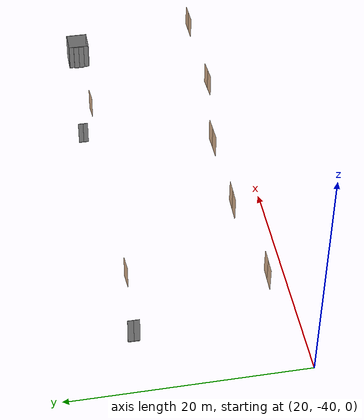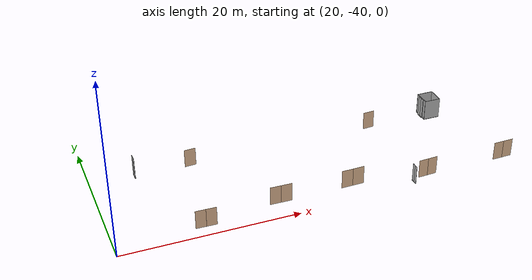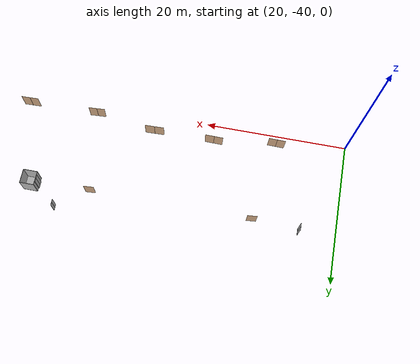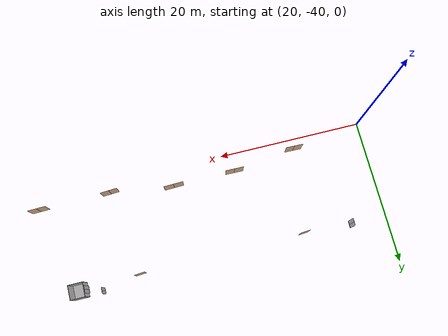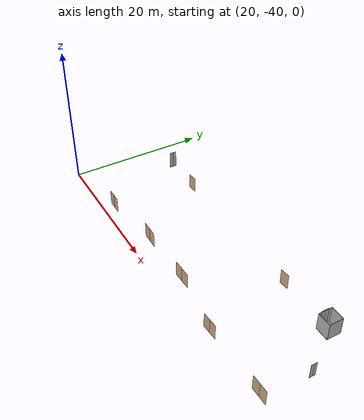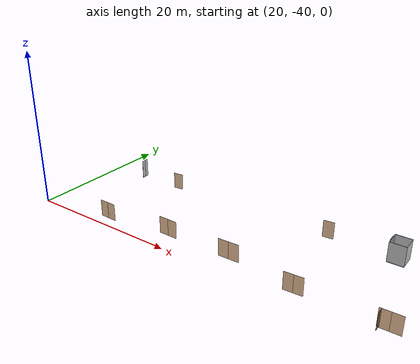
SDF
<sdf version="1.7">
 <world name="sim_world">
  <model name="door1">
   <pose>56.051119570614546 -38.47984300002366 0.0 0 0 -3.084511871183529</pose>
   <link name="right">
    <pose>0.5711190821411659 0 1.11 0 0 0</pose>
    <visual name="right_visual">
     <geometry><box><size>1.1322381642823318 0.03 2.2</size></box></geometry>
     <material>
      <ambient>0.5 0.25 0 0.6</ambient>
      <diffuse>0.5 0.25 0 0.6</diffuse>
      <pbr><metal><metalness>0.0</metalness></metal></pbr>
     </material>
    </visual>
    <collision name="right_collision">
     <geometry><box><size>1.1322381642823318 0.03 2.2</size></box></geometry>
     <surface><contact><collide_bitmask>0x02</collide_bitmask></contact></surface>
    </collision>
    <inertial>
     <mass>50.0</mass>
     <inertia><ixx>20.17041666666667</ixx><iyy>25.508180252739276</iyy><izz>5.345263586072603</izz></inertia>
    </inertial>
   </link>
   <joint name="right_joint" type="revolute">
    <parent>world</parent>
    <child>right</child>
    <axis><xyz>0 0 1</xyz><limit><lower>0</lower><upper>1.57</upper></limit></axis>
    <pose>0.5711190821411659 0 0 0 0 0</pose>
   </joint>
   <link name="left">
    <pose>-0.5711190821411659 0 1.11 0 0 0</pose>
    <visual name="left_visual">
     <geometry><box><size>1.1322381642823318 0.03 2.2</size></box></geometry>
     <material>
      <ambient>0.5 0.25 0 0.6</ambient>
      <diffuse>0.5 0.25 0 0.6</diffuse>
      <pbr><metal><metalness>0.0</metalness></metal></pbr>
     </material>
    </visual>
    <collision name="left_collision">
     <geometry><box><size>1.1322381642823318 0.03 2.2</size></box></geometry>
     <surface><contact><collide_bitmask>0x02</collide_bitmask></contact></surface>
    </collision>
    <inertial>
     <mass>50.0</mass>
     <inertia><ixx>20.17041666666667</ixx><iyy>25.508180252739276</iyy><izz>5.345263586072603</izz></inertia>
    </inertial>
   </link>
   <joint name="left_joint" type="revolute">
    <parent>world</parent>
    <child>left</child>
    <axis><xyz>0 0 1</xyz><limit><lower>-1.57</lower><upper>0</upper></limit></axis>
    <pose>-0.5711190821411659 0 0 0 0 0</pose>
   </joint>
   <plugin name="register_component" filename="libregister_component.so">
    <component name="Door">
     <v_max_door>0.5</v_max_door>
     <a_max_door>0.3</a_max_door>
     <a_nom_door>0.15</a_nom_door>
     <dx_min_door>0.01</dx_min_door>
     <f_max_door>500.0</f_max_door>
     <ros_interface>true</ros_interface>
     <door name="door1" type="DoubleSwingDoor" left_joint_name="left_joint" right_joint_name="right_joint"/>
    </component>
   </plugin>
  </model>
  <model name="door2">
   <pose>65.91755136783867 -38.3843543848864 0.0 0 0 -3.116317636538179</pose>
   <link name="right">
    <pose>0.599948082041474 0 1.11 0 0 0</pose>
    <visual name="right_visual">
     <geometry><box><size>1.189896164082948 0.03 2.2</size></box></geometry>
     <material>
      <ambient>0.5 0.25 0 0.6</ambient>
      <diffuse>0.5 0.25 0 0.6</diffuse>
      <pbr><metal><metalness>0.0</metalness></metal></pbr>
     </material>
    </visual>
    <collision name="right_collision">
     <geometry><box><size>1.189896164082948 0.03 2.2</size></box></geometry>
     <surface><contact><collide_bitmask>0x02</collide_bitmask></contact></surface>
    </collision>
    <inertial>
     <mass>50.0</mass>
     <inertia><ixx>20.17041666666667</ixx><iyy>26.06605367208048</iyy><izz>5.903137005413808</izz></inertia>
    </inertial>
   </link>
   <joint name="right_joint" type="revolute">
    <parent>world</parent>
    <child>right</child>
    <axis><xyz>0 0 1</xyz><limit><lower>0</lower><upper>1.57</upper></limit></axis>
    <pose>0.599948082041474 0 0 0 0 0</pose>
   </joint>
   <link name="left">
    <pose>-0.599948082041474 0 1.11 0 0 0</pose>
    <visual name="left_visual">
     <geometry><box><size>1.189896164082948 0.03 2.2</size></box></geometry>
     <material>
      <ambient>0.5 0.25 0 0.6</ambient>
      <diffuse>0.5 0.25 0 0.6</diffuse>
      <pbr><metal><metalness>0.0</metalness></metal></pbr>
     </material>
    </visual>
    <collision name="left_collision">
     <geometry><box><size>1.189896164082948 0.03 2.2</size></box></geometry>
     <surface><contact><collide_bitmask>0x02</collide_bitmask></contact></surface>
    </collision>
    <inertial>
     <mass>50.0</mass>
     <inertia><ixx>20.17041666666667</ixx><iyy>26.06605367208048</iyy><izz>5.903137005413808</izz></inertia>
    </inertial>
   </link>
   <joint name="left_joint" type="revolute">
    <parent>world</parent>
    <child>left</child>
    <axis><xyz>0 0 1</xyz><limit><lower>-1.57</lower><upper>0</upper></limit></axis>
    <pose>-0.599948082041474 0 0 0 0 0</pose>
   </joint>
   <plugin name="register_component" filename="libregister_component.so">
    <component name="Door">
     <v_max_door>0.5</v_max_door>
     <a_max_door>0.3</a_max_door>
     <a_nom_door>0.15</a_nom_door>
     <dx_min_door>0.01</dx_min_door>
     <f_max_door>500.0</f_max_door>
     <ros_interface>true</ros_interface>
     <door name="door2" type="DoubleSwingDoor" left_joint_name="left_joint" right_joint_name="right_joint"/>
    </component>
   </plugin>
  </model>
  <model name="door3">
   <pose>54.32078594566478 -26.636299151159776 0.0 0 0 0.0715749965452934</pose>
   <link name="right">
    <pose>0 0 1.11 0 0 0</pose>
    <visual name="right_visual">
     <geometry><box><size>1.3878997510727893 0.03 2.2</size></box></geometry>
     <material>
      <ambient>0.5 0.25 0 0.6</ambient>
      <diffuse>0.5 0.25 0 0.6</diffuse>
      <pbr><metal><metalness>0.0</metalness></metal></pbr>
     </material>
    </visual>
    <collision name="right_collision">
     <geometry><box><size>1.3878997510727893 0.03 2.2</size></box></geometry>
     <surface><contact><collide_bitmask>0x02</collide_bitmask></contact></surface>
    </collision>
    <inertial>
     <mass>50.0</mass>
     <inertia><ixx>20.17041666666667</ixx><iyy>28.192773829282967</iyy><izz>8.029857162616294</izz></inertia>
    </inertial>
   </link>
   <joint name="right_joint" type="revolute">
    <parent>world</parent>
    <child>right</child>
    <axis><xyz>0 0 1</xyz><limit><lower>0</lower><upper>1.57</upper></limit></axis>
    <pose>0.6989498755363946 0 0 0 0 0</pose>
   </joint>
   <plugin name="register_component" filename="libregister_component.so">
    <component name="Door">
     <v_max_door>0.5</v_max_door>
     <a_max_door>0.3</a_max_door>
     <a_nom_door>0.15</a_nom_door>
     <dx_min_door>0.01</dx_min_door>
     <f_max_door>500.0</f_max_door>
     <ros_interface>true</ros_interface>
     <door name="door3" type="SwingDoor" left_joint_name="empty_joint" right_joint_name="right_joint"/>
    </component>
   </plugin>
  </model>
  <model name="door4">
   <pose>31.692632350507186 -26.7141489135318 0.0 0 0 0.07624215236291886</pose>
   <link name="right">
    <pose>0 0 1.11 0 0 0</pose>
    <visual name="right_visual">
     <geometry><box><size>1.3456275371306028 0.03 2.2</size></box></geometry>
     <material>
      <ambient>0.5 0.25 0 0.6</ambient>
      <diffuse>0.5 0.25 0 0.6</diffuse>
      <pbr><metal><metalness>0.0</metalness></metal></pbr>
     </material>
    </visual>
    <collision name="right_collision">
     <geometry><box><size>1.3456275371306028 0.03 2.2</size></box></geometry>
     <surface><contact><collide_bitmask>0x02</collide_bitmask></contact></surface>
    </collision>
    <inertial>
     <mass>50.0</mass>
     <inertia><ixx>20.17041666666667</ixx><iyy>27.711306119517385</iyy><izz>7.548389452850715</izz></inertia>
    </inertial>
   </link>
   <joint name="right_joint" type="revolute">
    <parent>world</parent>
    <child>right</child>
    <axis><xyz>0 0 -1</xyz><limit><lower>0</lower><upper>1.57</upper></limit></axis>
    <pose>0.6778137685653014 0 0 0 0 0</pose>
   </joint>
   <plugin name="register_component" filename="libregister_component.so">
    <component name="Door">
     <v_max_door>0.5</v_max_door>
     <a_max_door>0.3</a_max_door>
     <a_nom_door>0.15</a_nom_door>
     <dx_min_door>0.01</dx_min_door>
     <f_max_door>500.0</f_max_door>
     <ros_interface>true</ros_interface>
     <door name="door4" type="SwingDoor" left_joint_name="empty_joint" right_joint_name="right_joint"/>
    </component>
   </plugin>
  </model>
  <model name="door7">
   <pose>29.91260965171542 -38.467831556049475 0.0 0 0 3.1163443786232454</pose>
   <link name="right">
    <pose>0.5886419665648434 0 1.11 0 0 0</pose>
    <visual name="right_visual">
     <geometry><box><size>1.1672839331296867 0.03 2.2</size></box></geometry>
     <material>
      <ambient>0.5 0.25 0 0.6</ambient>
      <diffuse>0.5 0.25 0 0.6</diffuse>
      <pbr><metal><metalness>0.0</metalness></metal></pbr>
     </material>
    </visual>
    <collision name="right_collision">
     <geometry><box><size>1.1672839331296867 0.03 2.2</size></box></geometry>
     <surface><contact><collide_bitmask>0x02</collide_bitmask></contact></surface>
    </collision>
    <inertial>
     <mass>50.0</mass>
     <inertia><ixx>20.17041666666667</ixx><iyy>25.8439657522613</iyy><izz>5.681049085594629</izz></inertia>
    </inertial>
   </link>
   <joint name="right_joint" type="revolute">
    <parent>world</parent>
    <child>right</child>
    <axis><xyz>0 0 1</xyz><limit><lower>0</lower><upper>1.57</upper></limit></axis>
    <pose>0.5886419665648434 0 0 0 0 0</pose>
   </joint>
   <link name="left">
    <pose>-0.5886419665648434 0 1.11 0 0 0</pose>
    <visual name="left_visual">
     <geometry><box><size>1.1672839331296867 0.03 2.2</size></box></geometry>
     <material>
      <ambient>0.5 0.25 0 0.6</ambient>
      <diffuse>0.5 0.25 0 0.6</diffuse>
      <pbr><metal><metalness>0.0</metalness></metal></pbr>
     </material>
    </visual>
    <collision name="left_collision">
     <geometry><box><size>1.1672839331296867 0.03 2.2</size></box></geometry>
     <surface><contact><collide_bitmask>0x02</collide_bitmask></contact></surface>
    </collision>
    <inertial>
     <mass>50.0</mass>
     <inertia><ixx>20.17041666666667</ixx><iyy>25.8439657522613</iyy><izz>5.681049085594629</izz></inertia>
    </inertial>
   </link>
   <joint name="left_joint" type="revolute">
    <parent>world</parent>
    <child>left</child>
    <axis><xyz>0 0 1</xyz><limit><lower>-1.57</lower><upper>0</upper></limit></axis>
    <pose>-0.5886419665648434 0 0 0 0 0</pose>
   </joint>
   <plugin name="register_component" filename="libregister_component.so">
    <component name="Door">
     <v_max_door>0.5</v_max_door>
     <a_max_door>0.3</a_max_door>
     <a_nom_door>0.15</a_nom_door>
     <dx_min_door>0.01</dx_min_door>
     <f_max_door>500.0</f_max_door>
     <ros_interface>true</ros_interface>
     <door name="door7" type="DoubleSwingDoor" left_joint_name="left_joint" right_joint_name="right_joint"/>
    </component>
   </plugin>
  </model>
  <model name="door9">
   <pose>38.739235807344016 -37.32229919844893 0.0 0 0 3.1234123269400906</pose>
   <link name="right">
    <pose>0.6301552102107287 0 1.11 0 0 0</pose>
    <visual name="right_visual">
     <geometry><box><size>1.2503104204214575 0.03 2.2</size></box></geometry>
     <material>
      <ambient>0.5 0.25 0 0.6</ambient>
      <diffuse>0.5 0.25 0 0.6</diffuse>
      <pbr><metal><metalness>0.0</metalness></metal></pbr>
     </material>
    </visual>
    <collision name="right_collision">
     <geometry><box><size>1.2503104204214575 0.03 2.2</size></box></geometry>
     <surface><contact><collide_bitmask>0x02</collide_bitmask></contact></surface>
    </collision>
    <inertial>
     <mass>50.0</mass>
     <inertia><ixx>20.17041666666667</ixx><iyy>26.68031728089368</iyy><izz>6.5174006142270065</izz></inertia>
    </inertial>
   </link>
   <joint name="right_joint" type="revolute">
    <parent>world</parent>
    <child>right</child>
    <axis><xyz>0 0 -1</xyz><limit><lower>0</lower><upper>1.57</upper></limit></axis>
    <pose>0.6301552102107287 0 0 0 0 0</pose>
   </joint>
   <link name="left">
    <pose>-0.6301552102107287 0 1.11 0 0 0</pose>
    <visual name="left_visual">
     <geometry><box><size>1.2503104204214575 0.03 2.2</size></box></geometry>
     <material>
      <ambient>0.5 0.25 0 0.6</ambient>
      <diffuse>0.5 0.25 0 0.6</diffuse>
      <pbr><metal><metalness>0.0</metalness></metal></pbr>
     </material>
    </visual>
    <collision name="left_collision">
     <geometry><box><size>1.2503104204214575 0.03 2.2</size></box></geometry>
     <surface><contact><collide_bitmask>0x02</collide_bitmask></contact></surface>
    </collision>
    <inertial>
     <mass>50.0</mass>
     <inertia><ixx>20.17041666666667</ixx><iyy>26.68031728089368</iyy><izz>6.5174006142270065</izz></inertia>
    </inertial>
   </link>
   <joint name="left_joint" type="revolute">
    <parent>world</parent>
    <child>left</child>
    <axis><xyz>0 0 -1</xyz><limit><lower>-1.57</lower><upper>0</upper></limit></axis>
    <pose>-0.6301552102107287 0 0 0 0 0</pose>
   </joint>
   <plugin name="register_component" filename="libregister_component.so">
    <component name="Door">
     <v_max_door>0.5</v_max_door>
     <a_max_door>0.3</a_max_door>
     <a_nom_door>0.15</a_nom_door>
     <dx_min_door>0.01</dx_min_door>
     <f_max_door>500.0</f_max_door>
     <ros_interface>true</ros_interface>
     <door name="door9" type="DoubleSwingDoor" left_joint_name="left_joint" right_joint_name="right_joint"/>
    </component>
   </plugin>
  </model>
  <model name="door10">
   <pose>47.33296290166223 -37.23722601849007 0.0 0 0 -3.113147754585356</pose>
   <link name="right">
    <pose>0.673811932769585 0 1.11 0 0 0</pose>
    <visual name="right_visual">
     <geometry><box><size>1.33762386553917 0.03 2.2</size></box></geometry>
     <material>
      <ambient>0.5 0.25 0 0.6</ambient>
      <diffuse>0.5 0.25 0 0.6</diffuse>
      <pbr><metal><metalness>0.0</metalness></metal></pbr>
     </material>
    </visual>
    <collision name="right_collision">
     <geometry><box><size>1.33762386553917 0.03 2.2</size></box></geometry>
     <surface><contact><collide_bitmask>0x02</collide_bitmask></contact></surface>
    </collision>
    <inertial>
     <mass>50.0</mass>
     <inertia><ixx>20.17041666666667</ixx><iyy>27.62182335691647</iyy><izz>7.458906690249797</izz></inertia>
    </inertial>
   </link>
   <joint name="right_joint" type="revolute">
    <parent>world</parent>
    <child>right</child>
    <axis><xyz>0 0 -1</xyz><limit><lower>0</lower><upper>1.57</upper></limit></axis>
    <pose>0.673811932769585 0 0 0 0 0</pose>
   </joint>
   <link name="left">
    <pose>-0.673811932769585 0 1.11 0 0 0</pose>
    <visual name="left_visual">
     <geometry><box><size>1.33762386553917 0.03 2.2</size></box></geometry>
     <material>
      <ambient>0.5 0.25 0 0.6</ambient>
      <diffuse>0.5 0.25 0 0.6</diffuse>
      <pbr><metal><metalness>0.0</metalness></metal></pbr>
     </material>
    </visual>
    <collision name="left_collision">
     <geometry><box><size>1.33762386553917 0.03 2.2</size></box></geometry>
     <surface><contact><collide_bitmask>0x02</collide_bitmask></contact></surface>
    </collision>
    <inertial>
     <mass>50.0</mass>
     <inertia><ixx>20.17041666666667</ixx><iyy>27.62182335691647</iyy><izz>7.458906690249797</izz></inertia>
    </inertial>
   </link>
   <joint name="left_joint" type="revolute">
    <parent>world</parent>
    <child>left</child>
    <axis><xyz>0 0 -1</xyz><limit><lower>-1.57</lower><upper>0</upper></limit></axis>
    <pose>-0.673811932769585 0 0 0 0 0</pose>
   </joint>
   <plugin name="register_component" filename="libregister_component.so">
    <component name="Door">
     <v_max_door>0.5</v_max_door>
     <a_max_door>0.3</a_max_door>
     <a_nom_door>0.15</a_nom_door>
     <dx_min_door>0.01</dx_min_door>
     <f_max_door>500.0</f_max_door>
     <ros_interface>true</ros_interface>
     <door name="door10" type="DoubleSwingDoor" left_joint_name="left_joint" right_joint_name="right_joint"/>
    </component>
   </plugin>
  </model>
  <model name="ShaftDoor_lift1_L1_doorL1">
   <pose>25.16746624736955 -26.387345423592567 0.0 0 0 -1.57</pose>
   <link name="right_door">
    <pose>0.25 0 1.25 0 0 0</pose>
    <visual name="right_door_visual">
     <geometry><box><size>0.5 0.03 2.5</size></box></geometry>
     <material>
      <ambient>0.5 0.5 0.5 1</ambient>
      <diffuse>0.7 0.7 0.7 1</diffuse>
      <specular>0.6 0.6 0.6 1</specular>
      <emissive>0.1 0.1 0.1 1</emissive>
     </material>
    </visual>
    <collision name="right_door_collision">
     <geometry><box><size>0.5 0.03 2.5</size></box></geometry>
     <surface><contact><collide_bitmask>0x02</collide_bitmask></contact></surface>
    </collision>
   </link>
   <link name="left_door">
    <pose>-0.25 0 1.25 0 0 0</pose>
    <visual name="left_door_visual">
     <geometry><box><size>0.5 0.03 2.5</size></box></geometry>
     <material>
      <ambient>0.5 0.5 0.5 1</ambient>
      <diffuse>0.7 0.7 0.7 1</diffuse>
      <specular>0.6 0.6 0.6 1</specular>
      <emissive>0.1 0.1 0.1 1</emissive>
     </material>
    </visual>
    <collision name="left_door_collision">
     <geometry><box><size>0.5 0.03 2.5</size></box></geometry>
     <surface><contact><collide_bitmask>0x02</collide_bitmask></contact></surface>
    </collision>
   </link>
   <joint name="right_joint" type="prismatic">
    <parent>world</parent>
    <child>right_door</child>
    <axis><xyz>1 0 0</xyz><limit><lower>0</lower><upper>0.5</upper></limit></axis>
   </joint>
   <joint name="left_joint" type="prismatic">
    <parent>world</parent>
    <child>left_door</child>
    <axis><xyz>1 0 0</xyz><limit><lower>-0.5</lower><upper>0</upper></limit></axis>
   </joint>
   <link name="ramp">
    <pose>0 0 -0.025 0 0 0</pose>
    <visual name="ramp_visual">
     <geometry><box><size>1.0 0.1 0.05</size></box></geometry>
     <material>
      <ambient>0.5 0.5 0.5 1</ambient>
      <diffuse>0.7 0.7 0.7 1</diffuse>
      <specular>0.6 0.6 0.6 1</specular>
      <emissive>0.1 0.1 0.1 1</emissive>
     </material>
    </visual>
    <collision name="ramp_collision">
     <geometry><box><size>1.0 0.1 0.05</size></box></geometry>
     <surface><contact><collide_bitmask>0x02</collide_bitmask></contact></surface>
    </collision>
   </link>
   <joint name="ramp_joint" type="fixed"><parent>world</parent><child>ramp</child></joint>
   <plugin name="register_component" filename="libregister_component.so">
    <component name="Door">
     <v_max_door>0.3</v_max_door>
     <a_max_door>0.2</a_max_door>
     <a_nom_door>0.1</a_nom_door>
     <dx_min_door>0.0001</dx_min_door>
     <f_max_door>35.0</f_max_door>
     <door left_joint_name="left_joint" name="ShaftDoor_lift1_L1_doorL1" right_joint_name="right_joint" type="DoubleSlidingDoor"/>
    </component>
   </plugin>
  </model>
  <model name="ShaftDoor_lift2_L1_doors">
   <pose>61.60812309365618 -26.387345423592567 0.0 0 0 -1.57</pose>
   <link name="right_door">
    <pose>0.25 0 1.25 0 0 0</pose>
    <visual name="right_door_visual">
     <geometry><box><size>0.5 0.03 2.5</size></box></geometry>
     <material>
      <ambient>0.5 0.5 0.5 1</ambient>
      <diffuse>0.7 0.7 0.7 1</diffuse>
      <specular>0.6 0.6 0.6 1</specular>
      <emissive>0.1 0.1 0.1 1</emissive>
     </material>
    </visual>
    <collision name="right_door_collision">
     <geometry><box><size>0.5 0.03 2.5</size></box></geometry>
     <surface><contact><collide_bitmask>0x02</collide_bitmask></contact></surface>
    </collision>
   </link>
   <link name="left_door">
    <pose>-0.25 0 1.25 0 0 0</pose>
    <visual name="left_door_visual">
     <geometry><box><size>0.5 0.03 2.5</size></box></geometry>
     <material>
      <ambient>0.5 0.5 0.5 1</ambient>
      <diffuse>0.7 0.7 0.7 1</diffuse>
      <specular>0.6 0.6 0.6 1</specular>
      <emissive>0.1 0.1 0.1 1</emissive>
     </material>
    </visual>
    <collision name="left_door_collision">
     <geometry><box><size>0.5 0.03 2.5</size></box></geometry>
     <surface><contact><collide_bitmask>0x02</collide_bitmask></contact></surface>
    </collision>
   </link>
   <joint name="right_joint" type="prismatic">
    <parent>world</parent>
    <child>right_door</child>
    <axis><xyz>1 0 0</xyz><limit><lower>0</lower><upper>0.5</upper></limit></axis>
   </joint>
   <joint name="left_joint" type="prismatic">
    <parent>world</parent>
    <child>left_door</child>
    <axis><xyz>1 0 0</xyz><limit><lower>-0.5</lower><upper>0</upper></limit></axis>
   </joint>
   <link name="ramp">
    <pose>0 0 -0.025 0 0 0</pose>
    <visual name="ramp_visual">
     <geometry><box><size>1.0 0.1 0.05</size></box></geometry>
     <material>
      <ambient>0.5 0.5 0.5 1</ambient>
      <diffuse>0.7 0.7 0.7 1</diffuse>
      <specular>0.6 0.6 0.6 1</specular>
      <emissive>0.1 0.1 0.1 1</emissive>
     </material>
    </visual>
    <collision name="ramp_collision">
     <geometry><box><size>1.0 0.1 0.05</size></box></geometry>
     <surface><contact><collide_bitmask>0x02</collide_bitmask></contact></surface>
    </collision>
   </link>
   <joint name="ramp_joint" type="fixed"><parent>world</parent><child>ramp</child></joint>
   <plugin name="register_component" filename="libregister_component.so">
    <component name="Door">
     <v_max_door>0.3</v_max_door>
     <a_max_door>0.2</a_max_door>
     <a_nom_door>0.1</a_nom_door>
     <dx_min_door>0.0001</dx_min_door>
     <f_max_door>35.0</f_max_door>
     <door left_joint_name="left_joint" name="ShaftDoor_lift2_L1_doors" right_joint_name="right_joint" type="DoubleSlidingDoor"/>
    </component>
   </plugin>
  </model>
  <model name="ShaftDoor_lift2_S1_doors">
   <pose>61.60812309365618 -26.387345423592567 -10.0 0 0 -1.57</pose>
   <link name="right_door">
    <pose>0.25 0 1.25 0 0 0</pose>
    <visual name="right_door_visual">
     <geometry><box><size>0.5 0.03 2.5</size></box></geometry>
     <material>
      <ambient>0.5 0.5 0.5 1</ambient>
      <diffuse>0.7 0.7 0.7 1</diffuse>
      <specular>0.6 0.6 0.6 1</specular>
      <emissive>0.1 0.1 0.1 1</emissive>
     </material>
    </visual>
    <collision name="right_door_collision">
     <geometry><box><size>0.5 0.03 2.5</size></box></geometry>
     <surface><contact><collide_bitmask>0x02</collide_bitmask></contact></surface>
    </collision>
   </link>
   <link name="left_door">
    <pose>-0.25 0 1.25 0 0 0</pose>
    <visual name="left_door_visual">
     <geometry><box><size>0.5 0.03 2.5</size></box></geometry>
     <material>
      <ambient>0.5 0.5 0.5 1</ambient>
      <diffuse>0.7 0.7 0.7 1</diffuse>
      <specular>0.6 0.6 0.6 1</specular>
      <emissive>0.1 0.1 0.1 1</emissive>
     </material>
    </visual>
    <collision name="left_door_collision">
     <geometry><box><size>0.5 0.03 2.5</size></box></geometry>
     <surface><contact><collide_bitmask>0x02</collide_bitmask></contact></surface>
    </collision>
   </link>
   <joint name="right_joint" type="prismatic">
    <parent>world</parent>
    <child>right_door</child>
    <axis><xyz>1 0 0</xyz><limit><lower>0</lower><upper>0.5</upper></limit></axis>
   </joint>
   <joint name="left_joint" type="prismatic">
    <parent>world</parent>
    <child>left_door</child>
    <axis><xyz>1 0 0</xyz><limit><lower>-0.5</lower><upper>0</upper></limit></axis>
   </joint>
   <link name="ramp">
    <pose>0 0 -0.025 0 0 0</pose>
    <visual name="ramp_visual">
     <geometry><box><size>1.0 0.1 0.05</size></box></geometry>
     <material>
      <ambient>0.5 0.5 0.5 1</ambient>
      <diffuse>0.7 0.7 0.7 1</diffuse>
      <specular>0.6 0.6 0.6 1</specular>
      <emissive>0.1 0.1 0.1 1</emissive>
     </material>
    </visual>
    <collision name="ramp_collision">
     <geometry><box><size>1.0 0.1 0.05</size></box></geometry>
     <surface><contact><collide_bitmask>0x02</collide_bitmask></contact></surface>
    </collision>
   </link>
   <joint name="ramp_joint" type="fixed"><parent>world</parent><child>ramp</child></joint>
   <plugin name="register_component" filename="libregister_component.so">
    <component name="Door">
     <v_max_door>0.3</v_max_door>
     <a_max_door>0.2</a_max_door>
     <a_nom_door>0.1</a_nom_door>
     <dx_min_door>0.0001</dx_min_door>
     <f_max_door>35.0</f_max_door>
     <door left_joint_name="left_joint" name="ShaftDoor_lift2_S1_doors" right_joint_name="right_joint" type="DoubleSlidingDoor"/>
    </component>
   </plugin>
  </model>
  <model name="lift2">
   <link name="platform">
    <inertial>
     <mass>1200</mass>
     <inertia><ixx>400.25000000000006</ixx><iyy>400.25000000000006</iyy><izz>800.0</izz></inertia>
    </inertial>
    <visual name="floor_visual">
     <pose>0 0 -0.025 0 0 0</pose>
     <geometry><box><size>2.0 2.0 0.05</size></box></geometry>
     <material>
      <ambient>0.5 0.5 0.5 1</ambient>
      <diffuse>0.7 0.7 0.7 1</diffuse>
      <specular>0.6 0.6 0.6 1</specular>
      <emissive>0.1 0.1 0.1 1</emissive>
     </material>
    </visual>
    <collision name="floor_collision">
     <pose>0 0 -0.025 0 0 0</pose>
     <geometry><box><size>2.0 2.0 0.05</size></box></geometry>
     <surface><contact><collide_bitmask>0x01</collide_bitmask></contact></surface>
    </collision>
    <visual name="frontwall1_visual">
     <pose>0.0 0.975 1.25 0 0 0</pose>
     <geometry><box><size>2.0 0.05 2.5</size></box></geometry>
     <material>
      <ambient>0.5 0.5 0.5 1</ambient>
      <diffuse>0.7 0.7 0.7 1</diffuse>
      <specular>0.6 0.6 0.6 1</specular>
      <emissive>0.1 0.1 0.1 1</emissive>
     </material>
    </visual>
    <collision name="frontwall1_collision">
     <pose>0.0 0.975 1.25 0 0 0</pose>
     <geometry><box><size>2.0 0.05 2.5</size></box></geometry>
     <surface><contact><collide_bitmask>0x01</collide_bitmask></contact></surface>
    </collision>
    <visual name="backwall1_visual">
     <pose>0.0 -0.975 1.25 0 0 0</pose>
     <geometry><box><size>2.0 0.05 2.5</size></box></geometry>
     <material>
      <ambient>0.5 0.5 0.5 1</ambient>
      <diffuse>0.7 0.7 0.7 1</diffuse>
      <specular>0.6 0.6 0.6 1</specular>
      <emissive>0.1 0.1 0.1 1</emissive>
     </material>
    </visual>
    <collision name="backwall1_collision">
     <pose>0.0 -0.975 1.25 0 0 0</pose>
     <geometry><box><size>2.0 0.05 2.5</size></box></geometry>
     <surface><contact><collide_bitmask>0x01</collide_bitmask></contact></surface>
    </collision>
    <visual name="leftwall1_visual">
     <pose>-0.975 -0.725 1.25 0 0 1.5707963267948966</pose>
     <geometry><box><size>0.44999999999999996 0.05 2.5</size></box></geometry>
     <material>
      <ambient>0.5 0.5 0.5 1</ambient>
      <diffuse>0.7 0.7 0.7 1</diffuse>
      <specular>0.6 0.6 0.6 1</specular>
      <emissive>0.1 0.1 0.1 1</emissive>
     </material>
    </visual>
    <collision name="leftwall1_collision">
     <pose>-0.975 -0.725 1.25 0 0 1.5707963267948966</pose>
     <geometry><box><size>0.44999999999999996 0.05 2.5</size></box></geometry>
     <surface><contact><collide_bitmask>0x01</collide_bitmask></contact></surface>
    </collision>
    <visual name="leftwall2_visual">
     <pose>-0.975 0.725 1.25 0 0 1.5707963267948966</pose>
     <geometry><box><size>0.44999999999999996 0.05 2.5</size></box></geometry>
     <material>
      <ambient>0.5 0.5 0.5 1</ambient>
      <diffuse>0.7 0.7 0.7 1</diffuse>
      <specular>0.6 0.6 0.6 1</specular>
      <emissive>0.1 0.1 0.1 1</emissive>
     </material>
    </visual>
    <collision name="leftwall2_collision">
     <pose>-0.975 0.725 1.25 0 0 1.5707963267948966</pose>
     <geometry><box><size>0.44999999999999996 0.05 2.5</size></box></geometry>
     <surface><contact><collide_bitmask>0x01</collide_bitmask></contact></surface>
    </collision>
    <visual name="rightwall1_visual">
     <pose>0.975 0.0 1.25 0 0 1.5707963267948966</pose>
     <geometry><box><size>1.9 0.05 2.5</size></box></geometry>
     <material>
      <ambient>0.5 0.5 0.5 1</ambient>
      <diffuse>0.7 0.7 0.7 1</diffuse>
      <specular>0.6 0.6 0.6 1</specular>
      <emissive>0.1 0.1 0.1 1</emissive>
     </material>
    </visual>
    <collision name="rightwall1_collision">
     <pose>0.975 0.0 1.25 0 0 1.5707963267948966</pose>
     <geometry><box><size>1.9 0.05 2.5</size></box></geometry>
     <surface><contact><collide_bitmask>0x01</collide_bitmask></contact></surface>
    </collision>
   </link>
   <joint name="cabin_joint" type="prismatic">
    <parent>world</parent>
    <child>platform</child>
    <axis><xyz>0 0 1</xyz></axis>
   </joint>
   <model name="CabinDoor_lift2_doors">
    <pose>-0.975 0.0 0 0 0 -1.57</pose>
    <link name="right_door">
     <pose>0.25 0 1.25 0 0 0</pose>
     <visual name="right_door_visual">
      <geometry><box><size>0.5 0.03 2.5</size></box></geometry>
      <material>
       <ambient>0.5 0.5 0.5 1</ambient>
       <diffuse>0.7 0.7 0.7 1</diffuse>
       <specular>0.6 0.6 0.6 1</specular>
       <emissive>0.1 0.1 0.1 1</emissive>
      </material>
     </visual>
     <collision name="right_door_collision">
      <geometry><box><size>0.5 0.03 2.5</size></box></geometry>
      <surface><contact><collide_bitmask>0x02</collide_bitmask></contact></surface>
     </collision>
    </link>
    <link name="left_door">
     <pose>-0.25 0 1.25 0 0 0</pose>
     <visual name="left_door_visual">
      <geometry><box><size>0.5 0.03 2.5</size></box></geometry>
      <material>
       <ambient>0.5 0.5 0.5 1</ambient>
       <diffuse>0.7 0.7 0.7 1</diffuse>
       <specular>0.6 0.6 0.6 1</specular>
       <emissive>0.1 0.1 0.1 1</emissive>
      </material>
     </visual>
     <collision name="left_door_collision">
      <geometry><box><size>0.5 0.03 2.5</size></box></geometry>
      <surface><contact><collide_bitmask>0x02</collide_bitmask></contact></surface>
     </collision>
    </link>
    <plugin name="register_component" filename="libregister_component.so">
     <component name="Door">
      <v_max_door>0.3</v_max_door>
      <a_max_door>0.2</a_max_door>
      <a_nom_door>0.1</a_nom_door>
      <dx_min_door>0.0001</dx_min_door>
      <f_max_door>35.0</f_max_door>
      <door left_joint_name="CabinDoor_lift2_doors_left_joint" name="CabinDoor_lift2_doors" right_joint_name="CabinDoor_lift2_doors_right_joint" type="DoubleSlidingDoor"/>
     </component>
    </plugin>
   </model>
   <joint name="CabinDoor_lift2_doors_right_joint" type="prismatic">
    <parent>platform</parent>
    <child>CabinDoor_lift2_doors::right_door</child>
    <axis><xyz>1 0 0</xyz><limit><lower>0</lower><upper>0.5</upper></limit></axis>
   </joint>
   <joint name="CabinDoor_lift2_doors_left_joint" type="prismatic">
    <parent>platform</parent>
    <child>CabinDoor_lift2_doors::left_door</child>
    <axis><xyz>1 0 0</xyz><limit><lower>-0.5</lower><upper>0</upper></limit></axis>
   </joint>
   <plugin name="register_component" filename="libregister_component.so">
    <component name="Lift">
     <lift_name>lift2</lift_name>
     <floor name="L1" elevation="0.0">
      <door_pair cabin_door="CabinDoor_lift2_doors" shaft_door="ShaftDoor_lift2_L1_doors"/>
     </floor>
     <floor name="S1" elevation="-10.0">
      <door_pair cabin_door="CabinDoor_lift2_doors" shaft_door="ShaftDoor_lift2_S1_doors"/>
     </floor>
     <initial_floor>L1</initial_floor>
     <v_max_cabin>2.0</v_max_cabin>
     <a_max_cabin>1.2</a_max_cabin>
     <a_nom_cabin>1.0</a_nom_cabin>
     <dx_min_cabin>0.001</dx_min_cabin>
     <f_max_cabin>25323.0</f_max_cabin>
     <cabin_joint_name>cabin_joint</cabin_joint_name>
    </component>
   </plugin>
   <pose>62.65812309365618 -26.387345423592567 0 0 0 0.0</pose>
  </model>
 </world>
</sdf>
